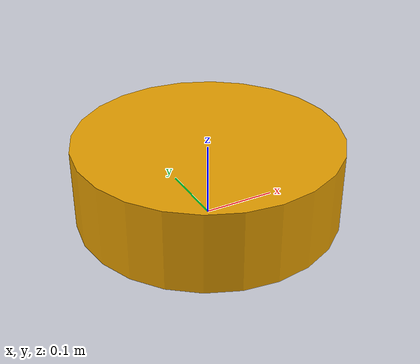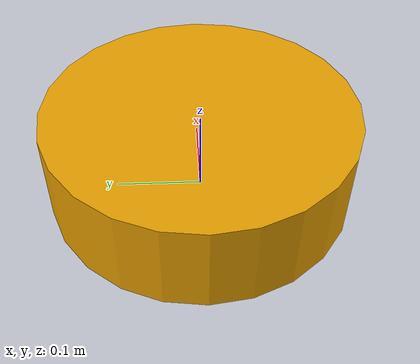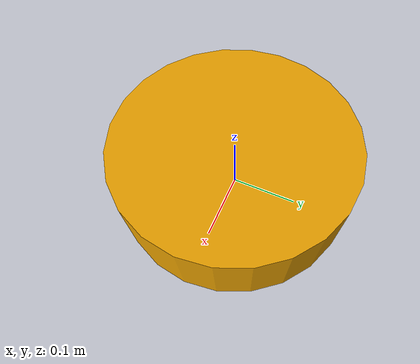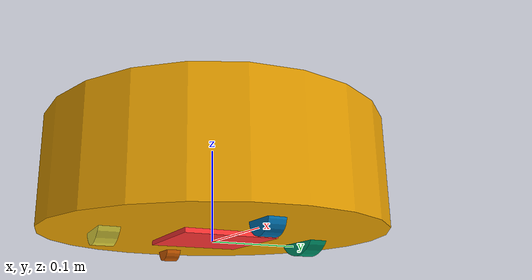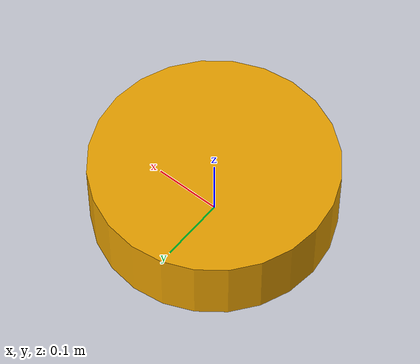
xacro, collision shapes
<?xml version="1.0"?>
<robot name="butlerbot_kobuki" xmlns:xacro="http://ros.org/wiki/xacro">

    <xacro:include filename="$(find butlerbot_description)/urdf/common_properties.xacro" />
    <xacro:include filename="$(find butlerbot_description)/urdf/butlerbot_kobuki_gazebo.xacro" />

    <!-- Base Link -->
    <link name="base_link">
        <visual>
            <geometry>
                <mesh filename="package://butlerbot_description/meshes/kobuki/main_body.dae" />
            </geometry>
            <origin xyz="0.001 0 0.05199" rpy="0 0 0" />
        </visual>
        <collision>
            <geometry>
                <cylinder length="0.10938" radius="0.178" />
            </geometry>
            <origin xyz="0.0 0 0.05949" rpy="0 0 0" />
        </collision>
        <inertial>
            <origin xyz="0.01 0 0" />
            <mass value="2.4" />
            <inertia ixx="0.019995" ixy="0.0" ixz="0.0"
                iyy="0.019995" iyz="0.0"
                izz="0.03675" />
        </inertial>
    </link>

    <!-- Base Footprint -->
    <link name="base_footprint" />

    <joint name="base_joint" type="fixed">
        <origin xyz="0 0 0.0102" rpy="0 0 0" />
        <parent link="base_link" />
        <child link="base_footprint" />
    </joint>

    <!-- Left Wheel -->
    <link name="wheel_left_link">
        <visual>
            <geometry>
                <mesh filename="package://butlerbot_description/meshes/wheel.dae" />
            </geometry>
            <origin rpy="0 0 0" xyz="0 0 0" />
        </visual>
        <collision>
            <geometry>
                <cylinder length="0.0206" radius="0.0352" />
            </geometry>
            <origin rpy="0 0 0" xyz="0 0 0" />
        </collision>
        <inertial>
            <mass value="0.01" />
            <origin xyz="0 0 0" />
            <inertia ixx="0.001" ixy="0.0" ixz="0.0" iyy="0.001" iyz="0.0" izz="0.001" />
        </inertial>
    </link>

    <joint name="joint_tire_left" type="continuous">
        <parent link="base_link" />
        <child link="wheel_left_link" />
        <origin rpy="-1.5707963267948966 0 0" xyz="0.00 0.115 0.0250" />
        <axis xyz="0 0 1" />
    </joint>

    <!-- Right Wheel -->
    <link name="wheel_right_link">
        <visual>
            <geometry>
                <mesh filename="package://butlerbot_description/meshes/wheel.dae" />
            </geometry>
            <origin rpy="0 0 0" xyz="0 0 0" />
        </visual>
        <collision>
            <geometry>
                <cylinder length="0.0206" radius="0.0350" />
            </geometry>
            <origin rpy="0 0 0" xyz="0 0 0" />
        </collision>
        <inertial>
            <mass value="0.01" />
            <origin xyz="0 0 0" />
            <inertia ixx="0.001" ixy="0.0" ixz="0.0" iyy="0.001" iyz="0.0" izz="0.001" />
        </inertial>
    </link>

    <joint name="joint_tire_right" type="continuous">
        <parent link="base_link" />
        <child link="wheel_right_link" />
        <origin rpy="-1.5707963267948966 0 0" xyz="0.00 -0.115 0.0250" />
        <axis xyz="0 0 1" />
    </joint>

    <!-- Front Castor Wheel -->
    <link name="caster_front_link">
        <collision>
            <geometry>
                <cylinder length="0.0176" radius="0.017" />
            </geometry>
            <origin rpy="0 0 0" xyz="0 0 0" />
        </collision>
        <inertial>
            <mass value="0.01" />
            <origin xyz="0 0 0" />
            <inertia ixx="0.001" ixy="0.0" ixz="0.0"
                iyy="0.001" iyz="0.0"
                izz="0.001" />
        </inertial>
    </link>

    <joint name="caster_front_joint" type="fixed">
        <parent link="base_link" />
        <child link="caster_front_link" />
        <origin xyz="0.115 0.0 0.007" rpy="${-M_PI/2} 0 0" />
    </joint>

    <!-- Back Castor Wheel -->
    <link name="caster_back_link">
        <collision>
            <geometry>
                <cylinder length="0.0176" radius="0.017" />
            </geometry>
            <origin rpy="0 0 0" xyz="0 0 0" />
        </collision>
        <inertial>
            <mass value="0.01" />
            <origin xyz="0 0 0" />
            <inertia ixx="0.001" ixy="0.0" ixz="0.0"
                iyy="0.001" iyz="0.0"
                izz="0.001" />
        </inertial>
    </link>

    <joint name="caster_back_joint" type="fixed">
        <parent link="base_link" />
        <child link="caster_back_link" />
        <origin xyz="-0.135 0.0 0.009" rpy="${-M_PI/2} 0 0" />
    </joint>

    <!-- Kobuki's sensors -->

    <!-- IMU Sensor -->
    <link name="imu_link">
        <visual>
            <geometry>
                <box size="0.05 0.05 0.05" />
            </geometry>
            <material name="red">
                <color rgba="1.0 0.2 0.2 1.0" />
            </material>
        </visual>

        <collision>
            <geometry>
                <box size="0.1 0.1 0.1" />
            </geometry>
        </collision>
    </link>

    <joint name="imu_joint" type="fixed">
        <parent link="base_link" />
        <child link="imu_link" />
        <origin xyz="0 0 0.05" />
    </joint>

    <!-- Left Cliff Sensor -->
    <link name="cliff_sensor_left_link">
        <inertial>
            <mass value="0.0001" />
            <origin xyz="0 0 0" />
            <inertia ixx="0.0001" ixy="0.0" ixz="0.0"
                iyy="0.0001" iyz="0.0"
                izz="0.0001" />
        </inertial>
    </link>

    <joint name="cliff_sensor_left_joint" type="fixed">
        <origin xyz="0.08734 0.13601 0.0214" rpy="0 ${M_PI/2} 0" />
        <parent link="base_link" />
        <child link="cliff_sensor_left_link" />
    </joint>

    <!-- Right Cliff Sensor -->
    <link name="cliff_sensor_right_link">
        <inertial>
            <mass value="0.0001" />
            <origin xyz="0 0 0" />
            <inertia ixx="0.0001" ixy="0.0" ixz="0.0"
                iyy="0.0001" iyz="0.0"
                izz="0.0001" />
        </inertial>
    </link>

    <joint name="cliff_sensor_right_joint" type="fixed">
        <origin xyz="0.085 -0.13601 0.0214" rpy="0 ${M_PI/2} 0" />
        <parent link="base_link" />
        <child link="cliff_sensor_right_link" />
    </joint>

    <!-- Front Cliff Sensor -->
    <link name="cliff_sensor_front_link">
        <inertial>
            <mass value="0.0001" />
            <origin xyz="0 0 0" />
            <inertia ixx="0.0001" ixy="0.0" ixz="0.0"
                iyy="0.0001" iyz="0.0"
                izz="0.0001" />
        </inertial>
    </link>

    <joint name="cliff_sensor_front_joint" type="fixed">
        <origin xyz="0.156 0.00 0.0214" rpy="0 ${M_PI/2} 0" />
        <parent link="base_link" />
        <child link="cliff_sensor_front_link" />
    </joint>

    <!-- Kobuki Gazebo simulation details -->
    <xacro:kobuki_sim />

</robot>

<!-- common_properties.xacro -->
<!--
  Various useful properties such as constants and materials
 -->
<robot name="xacro_properties" xmlns:xacro="http://ros.org/wiki/xacro">

    <xacro:property name="M_PI" value="3.1415926535897931" />

    <xacro:property name="material_white">
        <material name="white">
            <color rgba="1 1 1 1" />
        </material>
    </xacro:property>

    <xacro:property name="material_grey">
        <material name="grey">
            <color rgba="0.5 0.5 0.5 1" />
        </material>
    </xacro:property>

    <xacro:property name="material_light_grey">
        <material name="light_grey">
            <color rgba="0.6 0.6 0.6 1" />
        </material>
    </xacro:property>

    <xacro:property name="material_dark_grey">
        <material name="dark_grey">
            <color rgba="0.3 0.3 0.3 1" />
        </material>
    </xacro:property>

    <xacro:property name="material_black">
        <material name="black">
            <color rgba="0.1 0.1 0.1 1" />
        </material>
    </xacro:property>

    <xacro:property name="material_red">
        <material name="red">
            <color rgba="1 0 0 1" />
        </material>
    </xacro:property>

    <xacro:property name="material_green">
        <material name="green">
            <color rgba="0.0 0.8 0.0 1" />
        </material>
    </xacro:property>

    <xacro:property name="material_blue">
        <material name="blue">
            <color rgba="0.0 0.0 1.0 1" />
        </material>
    </xacro:property>

    <xacro:property name="material_grey_blue">
        <material name="grey_blue">
            <color rgba="0.4 0.4 1.0 1" />
        </material>
    </xacro:property>

    <xacro:property name="material_orange">
        <material name="orange">
            <color rgba="1.0 0.7 0.0 1" />
        </material>
    </xacro:property>

</robot>
